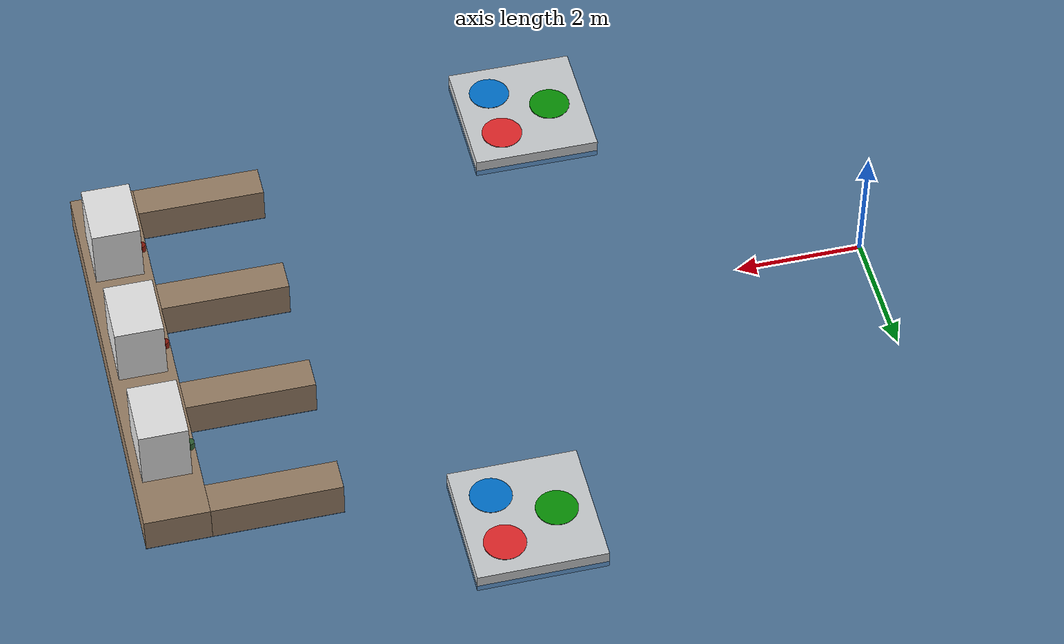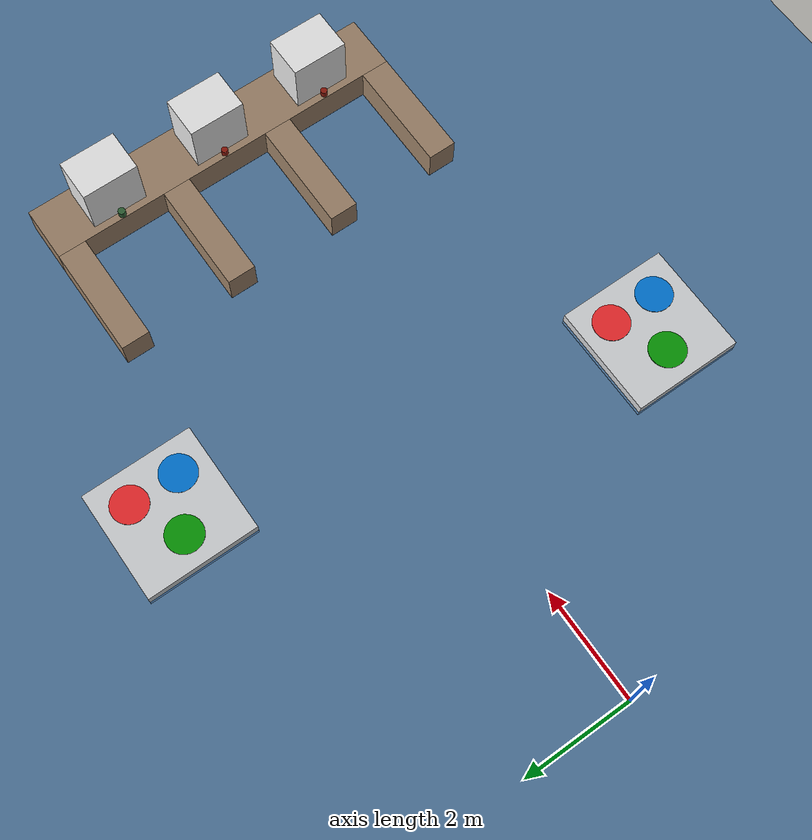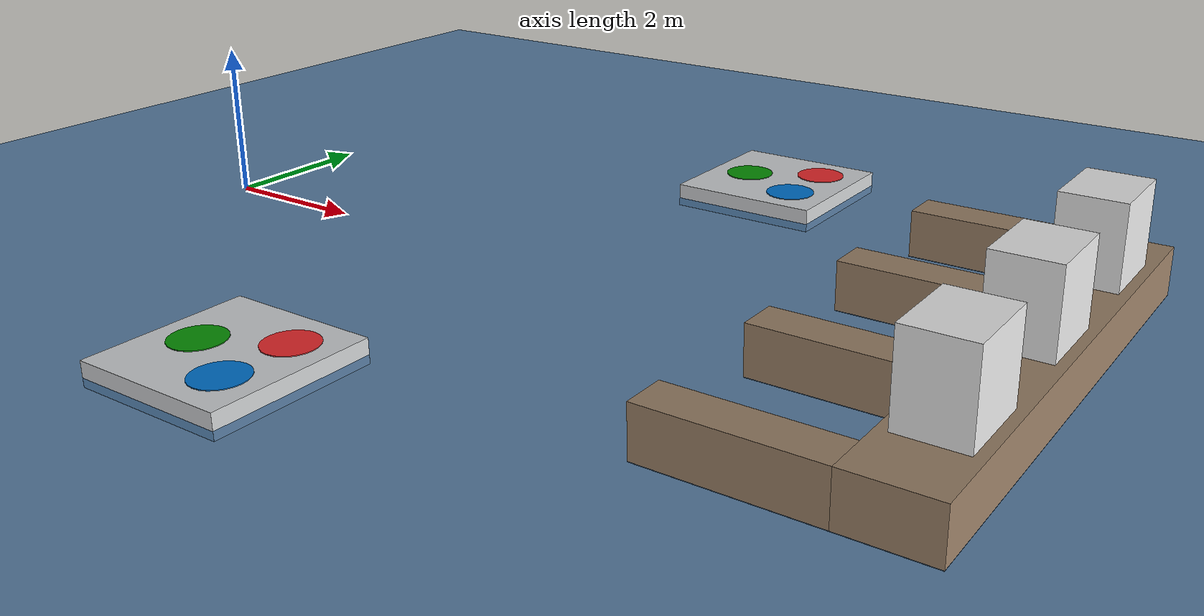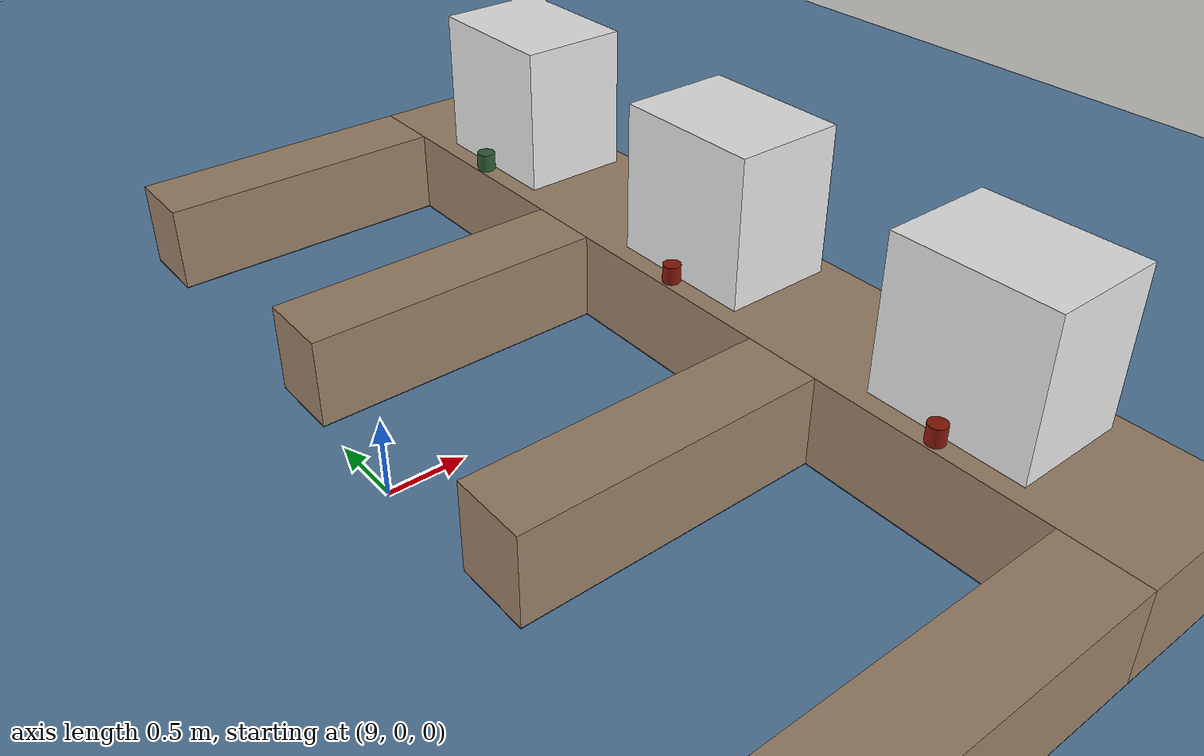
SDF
<?xml version='1.0' encoding='utf-8' ?>
<sdf version="1.9">
  <world name="prop_docking">
    <physics name="default_physics" type="ode">
      <max_step_size>0.001</max_step_size>
      <real_time_factor>1.0</real_time_factor>
    </physics>
    <gravity>0 0 -9.8</gravity>
    <magnetic_field>2.2e-05 -1.1e-06 -4.2e-05</magnetic_field>
    <spherical_coordinates>
      <surface_model>EARTH_WGS84</surface_model>
      <world_frame_orientation>ENU</world_frame_orientation>
      <latitude_deg>29.5286</latitude_deg>
      <longitude_deg>-82.3018</longitude_deg>
      <elevation>0</elevation>
      <heading_deg>0</heading_deg>
    </spherical_coordinates>
    <plugin filename="gz-sim-physics-system" name="gz::sim::systems::Physics" />
    <plugin
      filename="gz-sim-user-commands-system"
      name="gz::sim::systems::UserCommands"
    />
    <plugin
      filename="gz-sim-scene-broadcaster-system"
      name="gz::sim::systems::SceneBroadcaster"
    />
    <plugin filename="gz-sim-sensors-system" name="gz::sim::systems::Sensors" />
    <plugin filename="gz-sim-imu-system" name="gz::sim::systems::Imu" />
    <plugin filename="gz-sim-navsat-system" name="gz::sim::systems::NavSat" />
    <plugin filename="gz-sim-buoyancy-system" name="gz::sim::systems::Buoyancy">
      <graded_buoyancy>
        <default_density>1000</default_density>
        <density_change>
          <above_depth>0</above_depth>
          <density>1.225</density>
        </density_change>
      </graded_buoyancy>
    </plugin>
    <scene>
      <ambient>0.6 0.6 0.6 1</ambient>
      <background>0.6 0.75 0.9 1</background>
      <grid>false</grid>
      <shadows>true</shadows>
    </scene>
    <light type="directional" name="sun">
      <cast_shadows>true</cast_shadows>
      <pose>0 0 100 0 0 0</pose>
      <diffuse>0.9 0.9 0.9 1</diffuse>
      <specular>0.2 0.2 0.2 1</specular>
      <direction>-0.5 0.2 -0.9</direction>
    </light>
    <model name="water">
      <static>true</static>
      <link name="link">
        <visual name="visual">
          <geometry>
            <box>
              <size>300 300 0.01</size>
            </box>
          </geometry>
          <transparency>0.4</transparency>
          <cast_shadows>false</cast_shadows>
          <material>
            <ambient>0.1 0.3 0.5 1</ambient>
            <diffuse>0.1 0.35 0.6 1</diffuse>
            <specular>0.2 0.2 0.3 1</specular>
          </material>
        </visual>
      </link>
    </model>
    <!-- RobotX 2026 build guide: 0.5 m dock cubes, 13 x 2 main deck, four 1 x 4 fingers. -->
    <model name="dock">
      <static>true</static>
      <pose>0 0 0 0 0 0</pose>
      <link name="link">
        <collision name="deck_collision">
          <pose>11.5 0 0.3 0 0 0</pose>
          <geometry>
            <box>
              <size>1.0 6.596 0.6</size>
            </box>
          </geometry>
        </collision>
        <visual name="deck_visual">
          <pose>11.5 0 0.3 0 0 0</pose>
          <geometry>
            <box>
              <size>1.0 6.596 0.6</size>
            </box>
          </geometry>
          <material>
            <ambient>0.6 0.5 0.4 1</ambient>
            <diffuse>0.6 0.5 0.4 1</diffuse>
          </material>
        </visual>
        <collision name="finger_0_collision">
          <pose>10.0 3.0443 0.3 0 0 0</pose>
          <geometry>
            <box>
              <size>2.0 0.5074 0.6</size>
            </box>
          </geometry>
        </collision>
        <visual name="finger_0_visual">
          <pose>10.0 3.0443 0.3 0 0 0</pose>
          <geometry>
            <box>
              <size>2.0 0.5074 0.6</size>
            </box>
          </geometry>
          <material>
            <ambient>0.6 0.5 0.4 1</ambient>
            <diffuse>0.6 0.5 0.4 1</diffuse>
          </material>
        </visual>
        <collision name="finger_1_collision">
          <pose>10.0 1.0148 0.3 0 0 0</pose>
          <geometry>
            <box>
              <size>2.0 0.5074 0.6</size>
            </box>
          </geometry>
        </collision>
        <visual name="finger_1_visual">
          <pose>10.0 1.0148 0.3 0 0 0</pose>
          <geometry>
            <box>
              <size>2.0 0.5074 0.6</size>
            </box>
          </geometry>
          <material>
            <ambient>0.6 0.5 0.4 1</ambient>
            <diffuse>0.6 0.5 0.4 1</diffuse>
          </material>
        </visual>
        <collision name="finger_2_collision">
          <pose>10.0 -1.0148 0.3 0 0 0</pose>
          <geometry>
            <box>
              <size>2.0 0.5074 0.6</size>
            </box>
          </geometry>
        </collision>
        <visual name="finger_2_visual">
          <pose>10.0 -1.0148 0.3 0 0 0</pose>
          <geometry>
            <box>
              <size>2.0 0.5074 0.6</size>
            </box>
          </geometry>
          <material>
            <ambient>0.6 0.5 0.4 1</ambient>
            <diffuse>0.6 0.5 0.4 1</diffuse>
          </material>
        </visual>
        <collision name="finger_3_collision">
          <pose>10.0 -3.0443 0.3 0 0 0</pose>
          <geometry>
            <box>
              <size>2.0 0.5074 0.6</size>
            </box>
          </geometry>
        </collision>
        <visual name="finger_3_visual">
          <pose>10.0 -3.0443 0.3 0 0 0</pose>
          <geometry>
            <box>
              <size>2.0 0.5074 0.6</size>
            </box>
          </geometry>
          <material>
            <ambient>0.6 0.5 0.4 1</ambient>
            <diffuse>0.6 0.5 0.4 1</diffuse>
          </material>
        </visual>
        <!-- Building front sits one indicator diameter back from the deck edge:
             a solid box cannot have the real 160 mm notch the indicator stands in. -->
        <collision name="building_1_collision">
          <pose>11.505 2.0296 1.1 0 0 0</pose>
          <geometry>
            <box>
              <size>0.75 1.0 1.0</size>
            </box>
          </geometry>
        </collision>
        <visual name="building_1_visual">
          <pose>11.505 2.0296 1.1 0 0 0</pose>
          <geometry>
            <box>
              <size>0.75 1.0 1.0</size>
            </box>
          </geometry>
          <material>
            <ambient>0.9 0.9 0.9 1</ambient>
            <diffuse>0.9 0.9 0.9 1</diffuse>
          </material>
        </visual>
        <collision name="building_2_collision">
          <pose>11.505 0 1.1 0 0 0</pose>
          <geometry>
            <box>
              <size>0.75 1.0 1.0</size>
            </box>
          </geometry>
        </collision>
        <visual name="building_2_visual">
          <pose>11.505 0 1.1 0 0 0</pose>
          <geometry>
            <box>
              <size>0.75 1.0 1.0</size>
            </box>
          </geometry>
          <material>
            <ambient>0.9 0.9 0.9 1</ambient>
            <diffuse>0.9 0.9 0.9 1</diffuse>
          </material>
        </visual>
        <collision name="building_3_collision">
          <pose>11.505 -2.0296 1.1 0 0 0</pose>
          <geometry>
            <box>
              <size>0.75 1.0 1.0</size>
            </box>
          </geometry>
        </collision>
        <visual name="building_3_visual">
          <pose>11.505 -2.0296 1.1 0 0 0</pose>
          <geometry>
            <box>
              <size>0.75 1.0 1.0</size>
            </box>
          </geometry>
          <material>
            <ambient>0.9 0.9 0.9 1</ambient>
            <diffuse>0.9 0.9 0.9 1</diffuse>
          </material>
        </visual>
      </link>
    </model>
    <model name="indicator_0">
      <static>true</static>
      <pose>11.066 2.0296 0.6645 0 0 0</pose>
      <link name="link">
        <collision name="collision">
          <geometry>
            <cylinder>
              <radius>0.064</radius>
              <length>0.129</length>
            </cylinder>
          </geometry>
        </collision>
        <visual name="visual">
          <geometry>
            <cylinder>
              <radius>0.064</radius>
              <length>0.129</length>
            </cylinder>
          </geometry>
          <material>
            <ambient>0.18 0.37 0.20 1</ambient>
            <diffuse>0.18 0.37 0.20 1</diffuse>
          </material>
        </visual>
      </link>
    </model>
    <model name="indicator_1">
      <static>true</static>
      <pose>11.072 0 0.66 0 0 0</pose>
      <link name="link">
        <collision name="collision">
          <geometry>
            <cylinder>
              <radius>0.058</radius>
              <length>0.120</length>
            </cylinder>
          </geometry>
        </collision>
        <visual name="visual">
          <geometry>
            <cylinder>
              <radius>0.058</radius>
              <length>0.120</length>
            </cylinder>
          </geometry>
          <material>
            <ambient>0.53 0.09 0.04 1</ambient>
            <diffuse>0.53 0.09 0.04 1</diffuse>
          </material>
        </visual>
      </link>
    </model>
    <model name="indicator_2">
      <static>true</static>
      <pose>11.072 -2.0296 0.66 0 0 0</pose>
      <link name="link">
        <collision name="collision">
          <geometry>
            <cylinder>
              <radius>0.058</radius>
              <length>0.120</length>
            </cylinder>
          </geometry>
        </collision>
        <visual name="visual">
          <geometry>
            <cylinder>
              <radius>0.058</radius>
              <length>0.120</length>
            </cylinder>
          </geometry>
          <material>
            <ambient>0.53 0.09 0.04 1</ambient>
            <diffuse>0.53 0.09 0.04 1</diffuse>
          </material>
        </visual>
      </link>
    </model>
    <model name="platform_a">
      <static>true</static>
      <pose>6.4 4.1 0.05 0 0 0</pose>
      <link name="link">
        <collision name="collision">
          <geometry>
            <box>
              <size>2 2 0.3</size>
            </box>
          </geometry>
        </collision>
        <visual name="deck">
          <geometry>
            <box>
              <size>2 2 0.3</size>
            </box>
          </geometry>
          <material>
            <ambient>0.80 0.81 0.82 1</ambient>
            <diffuse>0.80 0.81 0.82 1</diffuse>
          </material>
        </visual>
        <visual name="red_circle">
          <pose>0.45 0.45 0.155 0 0 0</pose>
          <geometry>
            <cylinder>
              <radius>0.325</radius>
              <length>0.01</length>
            </cylinder>
          </geometry>
          <material>
            <ambient>0.91 0.16 0.17 1</ambient>
            <diffuse>0.91 0.16 0.17 1</diffuse>
          </material>
        </visual>
        <visual name="blue_circle">
          <pose>0.45 -0.45 0.155 0 0 0</pose>
          <geometry>
            <cylinder>
              <radius>0.325</radius>
              <length>0.01</length>
            </cylinder>
          </geometry>
          <material>
            <ambient>0.0 0.45 0.81 1</ambient>
            <diffuse>0.0 0.45 0.81 1</diffuse>
          </material>
        </visual>
        <visual name="green_circle">
          <pose>-0.45 0 0.155 0 0 0</pose>
          <geometry>
            <cylinder>
              <radius>0.325</radius>
              <length>0.01</length>
            </cylinder>
          </geometry>
          <material>
            <ambient>0.03 0.58 0.02 1</ambient>
            <diffuse>0.03 0.58 0.02 1</diffuse>
          </material>
        </visual>
      </link>
    </model>
    <model name="platform_b">
      <static>true</static>
      <pose>4.5 -4.0 0.05 0 0 0</pose>
      <link name="link">
        <collision name="collision">
          <geometry>
            <box>
              <size>2 2 0.3</size>
            </box>
          </geometry>
        </collision>
        <visual name="deck">
          <geometry>
            <box>
              <size>2 2 0.3</size>
            </box>
          </geometry>
          <material>
            <ambient>0.80 0.81 0.82 1</ambient>
            <diffuse>0.80 0.81 0.82 1</diffuse>
          </material>
        </visual>
        <visual name="red_circle">
          <pose>0.45 0.45 0.155 0 0 0</pose>
          <geometry>
            <cylinder>
              <radius>0.325</radius>
              <length>0.01</length>
            </cylinder>
          </geometry>
          <material>
            <ambient>0.91 0.16 0.17 1</ambient>
            <diffuse>0.91 0.16 0.17 1</diffuse>
          </material>
        </visual>
        <visual name="blue_circle">
          <pose>0.45 -0.45 0.155 0 0 0</pose>
          <geometry>
            <cylinder>
              <radius>0.325</radius>
              <length>0.01</length>
            </cylinder>
          </geometry>
          <material>
            <ambient>0.0 0.45 0.81 1</ambient>
            <diffuse>0.0 0.45 0.81 1</diffuse>
          </material>
        </visual>
        <visual name="green_circle">
          <pose>-0.45 0 0.155 0 0 0</pose>
          <geometry>
            <cylinder>
              <radius>0.325</radius>
              <length>0.01</length>
            </cylinder>
          </geometry>
          <material>
            <ambient>0.03 0.58 0.02 1</ambient>
            <diffuse>0.03 0.58 0.02 1</diffuse>
          </material>
        </visual>
      </link>
    </model>
  </world>
</sdf>
